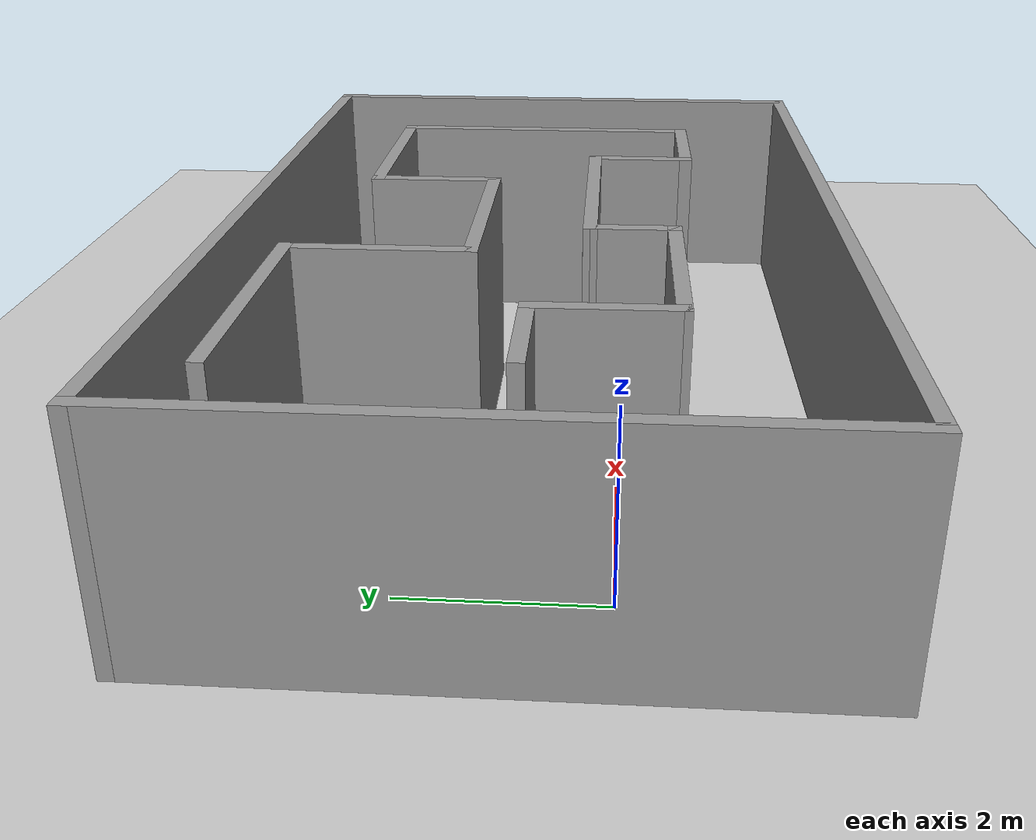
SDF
<sdf version="1.7">
 <world name="default">
  <light name="sun" type="directional">
   <pose>0 0 10 0 -0 0</pose>
   <diffuse>0.8 0.8 0.8 1</diffuse>
   <specular>0.2 0.2 0.2 1</specular>
   <attenuation>
    <range>1000</range>
    <constant>0.9</constant>
    <linear>0.01</linear>
    <quadratic>0.001</quadratic>
   </attenuation>
   <direction>-0.5 0.1 -0.9</direction>
   <spot><inner_angle>0</inner_angle><outer_angle>0</outer_angle><falloff>0</falloff></spot>
  </light>
  <model name="ground_plane">
   <static>1</static>
   <link name="link">
    <collision name="collision">
     <geometry><plane><normal>0 0 1</normal><size>100 100</size></plane></geometry>
     <surface><friction><ode><mu>100</mu><mu2>50</mu2></ode></friction></surface>
    </collision>
    <visual name="visual">
     <cast_shadows>0</cast_shadows>
     <geometry><plane><normal>0 0 1</normal><size>100 100</size></plane></geometry>
     <material>
      <script><uri>file://media/materials/scripts/gazebo.material</uri><name>Gazebo/Grey</name></script>
     </material>
    </visual>
   </link>
  </model>
  <gravity>0 0 -9.8</gravity>
  <magnetic_field>6e-06 2.3e-05 -4.2e-05</magnetic_field>
  <atmosphere type="adiabatic"/>
  <physics type="ode">
   <max_step_size>0.001</max_step_size>
   <real_time_factor>1</real_time_factor>
   <real_time_update_rate>1000</real_time_update_rate>
  </physics>
  <scene><ambient>0.4 0.4 0.4 1</ambient><background>0.7 0.7 0.7 1</background><shadows>1</shadows></scene>
  <audio><device>default</device></audio>
  <spherical_coordinates>
   <surface_model>EARTH_WGS84</surface_model>
   <latitude_deg>0</latitude_deg>
   <longitude_deg>0</longitude_deg>
   <elevation>0</elevation>
   <heading_deg>0</heading_deg>
  </spherical_coordinates>
  <model name="BigRoom">
   <pose>3.78654 0.913641 0 0 -0 0</pose>
   <link name="Wall_0">
    <collision name="Wall_0_Collision">
     <geometry><box><size>10 0.15 2.5</size></box></geometry>
     <pose>0 0 1.25 0 -0 0</pose>
    </collision>
    <visual name="Wall_0_Visual">
     <pose>0 0 1.25 0 -0 0</pose>
     <geometry><box><size>10 0.15 2.5</size></box></geometry>
     <material>
      <script><uri>file://media/materials/scripts/gazebo.material</uri><name>Gazebo/Grey</name></script>
      <ambient>1 1 1 1</ambient>
     </material>
     <meta><layer>0</layer></meta>
    </visual>
    <pose>-0 -3.175 0 0 -0 0</pose>
   </link>
   <link name="Wall_1">
    <collision name="Wall_1_Collision">
     <geometry><box><size>6.5 0.15 2.5</size></box></geometry>
     <pose>0 0 1.25 0 -0 0</pose>
    </collision>
    <visual name="Wall_1_Visual">
     <pose>0 0 1.25 0 -0 0</pose>
     <geometry><box><size>6.5 0.15 2.5</size></box></geometry>
     <material>
      <script><uri>file://media/materials/scripts/gazebo.material</uri><name>Gazebo/Grey</name></script>
      <ambient>1 1 1 1</ambient>
     </material>
     <meta><layer>0</layer></meta>
    </visual>
    <pose>4.925 0 0 0 -0 1.5708</pose>
   </link>
   <link name="Wall_10">
    <collision name="Wall_10_Collision">
     <geometry><box><size>1.5 0.15 2.5</size></box></geometry>
     <pose>0 0 1.25 0 -0 0</pose>
    </collision>
    <visual name="Wall_10_Visual">
     <pose>0 0 1.25 0 -0 0</pose>
     <geometry><box><size>1.5 0.15 2.5</size></box></geometry>
     <material>
      <script><uri>file://media/materials/scripts/gazebo.material</uri><name>Gazebo/Grey</name></script>
      <ambient>1 1 1 1</ambient>
     </material>
     <meta><layer>0</layer></meta>
    </visual>
    <pose>0.796489 1.24726 0 0 -0 1.5708</pose>
   </link>
   <link name="Wall_11">
    <collision name="Wall_11_Collision">
     <geometry><box><size>2.5 0.15 2.5</size></box></geometry>
     <pose>0 0 1.25 0 -0 0</pose>
    </collision>
    <visual name="Wall_11_Visual">
     <pose>0 0 1.25 0 -0 0</pose>
     <geometry><box><size>2.5 0.15 2.5</size></box></geometry>
     <material>
      <script><uri>file://media/materials/scripts/gazebo.material</uri><name>Gazebo/Grey</name></script>
      <ambient>1 1 1 1</ambient>
     </material>
     <meta><layer>0</layer></meta>
    </visual>
    <pose>1.97149 1.92226 0 0 -0 0</pose>
   </link>
   <link name="Wall_12">
    <collision name="Wall_12_Collision">
     <geometry><box><size>3.75 0.15 2.5</size></box></geometry>
     <pose>0 0 1.25 0 -0 0</pose>
    </collision>
    <visual name="Wall_12_Visual">
     <pose>0 0 1.25 0 -0 0</pose>
     <geometry><box><size>3.75 0.15 2.5</size></box></geometry>
     <material>
      <script><uri>file://media/materials/scripts/gazebo.material</uri><name>Gazebo/Grey</name></script>
      <ambient>1 1 1 1</ambient>
     </material>
     <meta><layer>0</layer></meta>
    </visual>
    <pose>3.14649 0.122258 0 0 -0 -1.5708</pose>
   </link>
   <link name="Wall_13">
    <collision name="Wall_13_Collision">
     <geometry><box><size>1.5 0.15 2.5</size></box></geometry>
     <pose>0 0 1.25 0 -0 0</pose>
    </collision>
    <visual name="Wall_13_Visual">
     <pose>0 0 1.25 0 -0 0</pose>
     <geometry><box><size>1.5 0.15 2.5</size></box></geometry>
     <material>
      <script><uri>file://media/materials/scripts/gazebo.material</uri><name>Gazebo/Grey</name></script>
      <ambient>1 1 1 1</ambient>
     </material>
     <meta><layer>0</layer></meta>
    </visual>
    <pose>2.47149 -1.67774 0 0 -0 3.14159</pose>
   </link>
   <link name="Wall_14">
    <collision name="Wall_14_Collision">
     <geometry><box><size>1.25 0.15 2.5</size></box></geometry>
     <pose>0 0 1.25 0 -0 0</pose>
    </collision>
    <visual name="Wall_14_Visual">
     <pose>0 0 1.25 0 -0 0</pose>
     <geometry><box><size>1.25 0.15 2.5</size></box></geometry>
     <material>
      <script><uri>file://media/materials/scripts/gazebo.material</uri><name>Gazebo/Grey</name></script>
      <ambient>1 1 1 1</ambient>
     </material>
     <meta><layer>0</layer></meta>
    </visual>
    <pose>1.79649 -1.12774 0 0 -0 1.5708</pose>
   </link>
   <link name="Wall_15">
    <collision name="Wall_15_Collision">
     <geometry><box><size>2.75 0.15 2.5</size></box></geometry>
     <pose>0 0 1.25 0 -0 0</pose>
    </collision>
    <visual name="Wall_15_Visual">
     <pose>0 0 1.25 0 -0 0</pose>
     <geometry><box><size>2.75 0.15 2.5</size></box></geometry>
     <material>
      <script><uri>file://media/materials/scripts/gazebo.material</uri><name>Gazebo/Grey</name></script>
      <ambient>1 1 1 1</ambient>
     </material>
     <meta><layer>0</layer></meta>
    </visual>
    <pose>0.496489 -0.577742 0 0 -0 3.14159</pose>
   </link>
   <link name="Wall_16">
    <collision name="Wall_16_Collision">
     <geometry><box><size>1.01737 0.15 2.5</size></box></geometry>
     <pose>0 0 1.25 0 -0 0</pose>
    </collision>
    <visual name="Wall_16_Visual">
     <pose>0 0 1.25 0 -0 0</pose>
     <geometry><box><size>1.01737 0.15 2.5</size></box></geometry>
     <material>
      <script><uri>file://media/materials/scripts/gazebo.material</uri><name>Gazebo/Grey</name></script>
      <ambient>1 1 1 1</ambient>
     </material>
     <meta><layer>0</layer></meta>
    </visual>
    <pose>-0.798766 -1.0114 0 0 -0 -1.55985</pose>
   </link>
   <link name="Wall_17">
    <collision name="Wall_17_Collision">
     <geometry><box><size>2.25 0.15 2.5</size></box></geometry>
     <pose>0 0 1.25 0 -0 0</pose>
    </collision>
    <visual name="Wall_17_Visual">
     <pose>0 0 1.25 0 -0 0</pose>
     <geometry><box><size>2.25 0.15 2.5</size></box></geometry>
     <material>
      <script><uri>file://media/materials/scripts/gazebo.material</uri><name>Gazebo/Grey</name></script>
      <ambient>1 1 1 1</ambient>
     </material>
     <meta><layer>0</layer></meta>
    </visual>
    <pose>-1.84402 -1.44506 0 0 -0 3.14159</pose>
   </link>
   <link name="Wall_18">
    <collision name="Wall_18_Collision">
     <geometry><box><size>1.51164 0.15 2.5</size></box></geometry>
     <pose>0 0 1.25 0 -0 0</pose>
    </collision>
    <visual name="Wall_18_Visual">
     <pose>0 0 1.25 0 -0 0</pose>
     <geometry><box><size>1.51164 0.15 2.5</size></box></geometry>
     <material>
      <script><uri>file://media/materials/scripts/gazebo.material</uri><name>Gazebo/Grey</name></script>
      <ambient>1 1 1 1</ambient>
     </material>
     <meta><layer>0</layer></meta>
    </visual>
    <pose>-2.89877 -0.758545 0 0 -0 1.57777</pose>
   </link>
   <link name="Wall_19">
    <collision name="Wall_19_Collision">
     <geometry><box><size>1.25 0.15 2.5</size></box></geometry>
     <pose>0 0 1.25 0 -0 0</pose>
    </collision>
    <visual name="Wall_19_Visual">
     <pose>0 0 1.25 0 -0 0</pose>
     <geometry><box><size>1.25 0.15 2.5</size></box></geometry>
     <material>
      <script><uri>file://media/materials/scripts/gazebo.material</uri><name>Gazebo/Grey</name></script>
      <ambient>1 1 1 1</ambient>
     </material>
     <meta><layer>0</layer></meta>
    </visual>
    <pose>-3.45351 -0.077742 0 0 -0 3.14159</pose>
   </link>
   <link name="Wall_3">
    <collision name="Wall_3_Collision">
     <geometry><box><size>10 0.15 2.5</size></box></geometry>
     <pose>0 0 1.25 0 -0 0</pose>
    </collision>
    <visual name="Wall_3_Visual">
     <pose>0 0 1.25 0 -0 0</pose>
     <geometry><box><size>10 0.15 2.5</size></box></geometry>
     <material>
      <script><uri>file://media/materials/scripts/gazebo.material</uri><name>Gazebo/Grey</name></script>
      <ambient>1 1 1 1</ambient>
     </material>
     <meta><layer>0</layer></meta>
    </visual>
    <pose>-0 3.175 0 0 -0 3.14159</pose>
   </link>
   <link name="Wall_4">
    <collision name="Wall_4_Collision">
     <geometry><box><size>6.5 0.15 2.5</size></box></geometry>
     <pose>0 0 1.25 0 -0 0</pose>
    </collision>
    <visual name="Wall_4_Visual">
     <pose>0 0 1.25 0 -0 0</pose>
     <geometry><box><size>6.5 0.15 2.5</size></box></geometry>
     <material>
      <script><uri>file://media/materials/scripts/gazebo.material</uri><name>Gazebo/Grey</name></script>
      <ambient>1 1 1 1</ambient>
     </material>
     <meta><layer>0</layer></meta>
    </visual>
    <pose>-4.925 0 0 0 -0 -1.5708</pose>
   </link>
   <link name="Wall_7">
    <collision name="Wall_7_Collision">
     <geometry><box><size>2.75 0.15 2.5</size></box></geometry>
     <pose>0 0 1.25 0 -0 0</pose>
    </collision>
    <visual name="Wall_7_Visual">
     <pose>0 0 1.25 0 -0 0</pose>
     <geometry><box><size>2.75 0.15 2.5</size></box></geometry>
     <material>
      <script><uri>file://media/materials/scripts/gazebo.material</uri><name>Gazebo/Grey</name></script>
      <ambient>1 1 1 1</ambient>
     </material>
     <meta><layer>0</layer></meta>
    </visual>
    <pose>-2.85351 2.42226 0 0 -0 0</pose>
   </link>
   <link name="Wall_8">
    <collision name="Wall_8_Collision">
     <geometry><box><size>2 0.15 2.5</size></box></geometry>
     <pose>0 0 1.25 0 -0 0</pose>
    </collision>
    <visual name="Wall_8_Visual">
     <pose>0 0 1.25 0 -0 0</pose>
     <geometry><box><size>2 0.15 2.5</size></box></geometry>
     <material>
      <script><uri>file://media/materials/scripts/gazebo.material</uri><name>Gazebo/Grey</name></script>
      <ambient>1 1 1 1</ambient>
     </material>
     <meta><layer>0</layer></meta>
    </visual>
    <pose>-1.55351 1.49726 0 0 -0 -1.5708</pose>
   </link>
   <link name="Wall_9">
    <collision name="Wall_9_Collision">
     <geometry><box><size>2.5 0.15 2.5</size></box></geometry>
     <pose>0 0 1.25 0 -0 0</pose>
    </collision>
    <visual name="Wall_9_Visual">
     <pose>0 0 1.25 0 -0 0</pose>
     <geometry><box><size>2.5 0.15 2.5</size></box></geometry>
     <material>
      <script><uri>file://media/materials/scripts/gazebo.material</uri><name>Gazebo/Grey</name></script>
      <ambient>1 1 1 1</ambient>
     </material>
     <meta><layer>0</layer></meta>
    </visual>
    <pose>-0.378511 0.572258 0 0 -0 0</pose>
   </link>
   <static>1</static>
  </model>
 </world>
</sdf>
